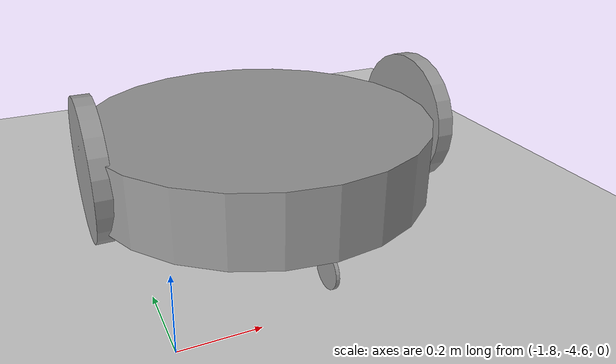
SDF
<sdf version="1.6">
 <world name="default">
  <model name="ground_plane">
   <static>1</static>
   <link name="link">
    <collision name="collision">
     <geometry><plane><normal>0 0 1</normal><size>100 100</size></plane></geometry>
     <surface>
      <contact><collide_bitmask>65535</collide_bitmask></contact>
      <friction><ode><mu>100</mu><mu2>50</mu2></ode></friction>
     </surface>
    </collision>
    <visual name="visual">
     <cast_shadows>0</cast_shadows>
     <geometry><plane><normal>0 0 1</normal><size>100 100</size></plane></geometry>
     <material>
      <script><uri>file://media/materials/scripts/gazebo.material</uri><name>Gazebo/Grey</name></script>
     </material>
    </visual>
   </link>
  </model>
  <model name="round_robot">
   <link name="link_1">
    <pose>-0.012515 0.112498 0.027501 0 -0 0</pose>
    <inertial>
     <mass>1</mass>
     <inertia><ixx>0.145833</ixx><ixy>0</ixy><ixz>0</ixz><iyy>0.145833</iyy><iyz>0</iyz><izz>0.125</izz></inertia>
    </inertial>
    <visual name="visual">
     <geometry><cylinder><radius>0.5</radius><length>0.2</length></cylinder></geometry>
     <material>
      <lighting>1</lighting>
      <script><uri>file://media/materials/scripts/gazebo.material</uri><name>Gazebo/Grey</name></script>
      <shader type="pixel"><normal_map>__default__</normal_map></shader>
      <ambient>0.3 0.3 0.3 1</ambient>
      <diffuse>0.7 0.7 0.7 1</diffuse>
      <specular>0.01 0.01 0.01 1</specular>
      <emissive>0 0 0 1</emissive>
     </material>
    </visual>
    <collision name="collision">
     <geometry><cylinder><radius>0.5</radius><length>0.2</length></cylinder></geometry>
     <surface>
      <friction>
       <ode><mu>1</mu><mu2>1</mu2><fdir1>0 0 0</fdir1><slip1>0</slip1><slip2>0</slip2></ode>
       <torsional>
        <coefficient>1</coefficient>
        <patch_radius>0</patch_radius>
        <surface_radius>0</surface_radius>
        <use_patch_radius>1</use_patch_radius>
        <ode><slip>0</slip></ode>
       </torsional>
      </friction>
      <bounce><restitution_coefficient>0</restitution_coefficient><threshold>1e+06</threshold></bounce>
      <contact>
       <collide_without_contact>0</collide_without_contact>
       <collide_without_contact_bitmask>1</collide_without_contact_bitmask>
       <collide_bitmask>1</collide_bitmask>
       <ode>
        <soft_cfm>0</soft_cfm>
        <soft_erp>0.2</soft_erp>
        <kp>1e+13</kp>
        <kd>1</kd>
        <max_vel>0.01</max_vel>
        <min_depth>0</min_depth>
       </ode>
       <bullet>
        <split_impulse>1</split_impulse>
        <split_impulse_penetration_threshold>-0.01</split_impulse_penetration_threshold>
        <soft_cfm>0</soft_cfm>
        <soft_erp>0.2</soft_erp>
        <kp>1e+13</kp>
        <kd>1</kd>
       </bullet>
      </contact>
     </surface>
    </collision>
   </link>
   <link name="link_2">
    <pose>-0.487485 0.112508 0.047498 1.57075 0 1.5707</pose>
    <inertial>
     <mass>1</mass>
     <inertia><ixx>0.145833</ixx><ixy>0</ixy><ixz>0</ixz><iyy>0.145833</iyy><iyz>0</iyz><izz>0.125</izz></inertia>
    </inertial>
    <visual name="visual">
     <geometry><cylinder><radius>0.2</radius><length>0.05</length></cylinder></geometry>
     <material>
      <lighting>1</lighting>
      <script><uri>file://media/materials/scripts/gazebo.material</uri><name>Gazebo/Grey</name></script>
      <shader type="pixel"><normal_map>__default__</normal_map></shader>
      <ambient>0.3 0.3 0.3 1</ambient>
      <diffuse>0.7 0.7 0.7 1</diffuse>
      <specular>0.01 0.01 0.01 1</specular>
      <emissive>0 0 0 1</emissive>
     </material>
    </visual>
    <collision name="collision">
     <geometry><cylinder><radius>0.2</radius><length>0.05</length></cylinder></geometry>
     <surface>
      <friction>
       <ode><mu>1</mu><mu2>1</mu2><fdir1>0 0 0</fdir1><slip1>0</slip1><slip2>0</slip2></ode>
       <torsional>
        <coefficient>1</coefficient>
        <patch_radius>0</patch_radius>
        <surface_radius>0</surface_radius>
        <use_patch_radius>1</use_patch_radius>
        <ode><slip>0</slip></ode>
       </torsional>
      </friction>
      <bounce><restitution_coefficient>0</restitution_coefficient><threshold>1e+06</threshold></bounce>
      <contact>
       <collide_without_contact>0</collide_without_contact>
       <collide_without_contact_bitmask>1</collide_without_contact_bitmask>
       <collide_bitmask>1</collide_bitmask>
       <ode>
        <soft_cfm>0</soft_cfm>
        <soft_erp>0.2</soft_erp>
        <kp>1e+13</kp>
        <kd>1</kd>
        <max_vel>0.01</max_vel>
        <min_depth>0</min_depth>
       </ode>
       <bullet>
        <split_impulse>1</split_impulse>
        <split_impulse_penetration_threshold>-0.01</split_impulse_penetration_threshold>
        <soft_cfm>0</soft_cfm>
        <soft_erp>0.2</soft_erp>
        <kp>1e+13</kp>
        <kd>1</kd>
       </bullet>
      </contact>
     </surface>
    </collision>
   </link>
   <link name="link_2_clone">
    <pose>0.512514 0.112498 0.047501 1.57075 0 1.5707</pose>
    <inertial>
     <mass>1</mass>
     <inertia><ixx>0.145833</ixx><ixy>0</ixy><ixz>0</ixz><iyy>0.145833</iyy><iyz>0</iyz><izz>0.125</izz></inertia>
    </inertial>
    <visual name="visual">
     <geometry><cylinder><radius>0.2</radius><length>0.05</length></cylinder></geometry>
     <material>
      <lighting>1</lighting>
      <script><uri>file://media/materials/scripts/gazebo.material</uri><name>Gazebo/Grey</name></script>
      <shader type="pixel"><normal_map>__default__</normal_map></shader>
      <ambient>0.3 0.3 0.3 1</ambient>
      <diffuse>0.7 0.7 0.7 1</diffuse>
      <specular>0.01 0.01 0.01 1</specular>
      <emissive>0 0 0 1</emissive>
     </material>
    </visual>
    <collision name="collision">
     <geometry><cylinder><radius>0.2</radius><length>0.05</length></cylinder></geometry>
     <surface>
      <friction>
       <ode><mu>1</mu><mu2>1</mu2><fdir1>0 0 0</fdir1><slip1>0</slip1><slip2>0</slip2></ode>
       <torsional>
        <coefficient>1</coefficient>
        <patch_radius>0</patch_radius>
        <surface_radius>0</surface_radius>
        <use_patch_radius>1</use_patch_radius>
        <ode><slip>0</slip></ode>
       </torsional>
      </friction>
      <bounce><restitution_coefficient>0</restitution_coefficient><threshold>1e+06</threshold></bounce>
      <contact>
       <collide_without_contact>0</collide_without_contact>
       <collide_without_contact_bitmask>1</collide_without_contact_bitmask>
       <collide_bitmask>1</collide_bitmask>
       <ode>
        <soft_cfm>0</soft_cfm>
        <soft_erp>0.2</soft_erp>
        <kp>1e+13</kp>
        <kd>1</kd>
        <max_vel>0.01</max_vel>
        <min_depth>0</min_depth>
       </ode>
       <bullet>
        <split_impulse>1</split_impulse>
        <split_impulse_penetration_threshold>-0.01</split_impulse_penetration_threshold>
        <soft_cfm>0</soft_cfm>
        <soft_erp>0.2</soft_erp>
        <kp>1e+13</kp>
        <kd>1</kd>
       </bullet>
      </contact>
     </surface>
    </collision>
   </link>
   <link name="link_2_clone_0">
    <pose>-0.012515 -0.337502 -0.122499 1.57075 0 1.5707</pose>
    <inertial>
     <mass>1</mass>
     <inertia><ixx>0.145833</ixx><ixy>0</ixy><ixz>0</ixz><iyy>0.145833</iyy><iyz>0</iyz><izz>0.125</izz></inertia>
    </inertial>
    <visual name="visual">
     <geometry><cylinder><radius>0.05</radius><length>0.01</length></cylinder></geometry>
     <material>
      <lighting>1</lighting>
      <script><uri>file://media/materials/scripts/gazebo.material</uri><name>Gazebo/Grey</name></script>
      <shader type="pixel"><normal_map>__default__</normal_map></shader>
      <ambient>0.3 0.3 0.3 1</ambient>
      <diffuse>0.7 0.7 0.7 1</diffuse>
      <specular>0.01 0.01 0.01 1</specular>
      <emissive>0 0 0 1</emissive>
     </material>
    </visual>
    <collision name="collision">
     <geometry><cylinder><radius>0.05</radius><length>0.01</length></cylinder></geometry>
     <surface>
      <friction>
       <ode><mu>1</mu><mu2>1</mu2><fdir1>0 0 0</fdir1><slip1>0</slip1><slip2>0</slip2></ode>
       <torsional>
        <coefficient>1</coefficient>
        <patch_radius>0</patch_radius>
        <surface_radius>0</surface_radius>
        <use_patch_radius>1</use_patch_radius>
        <ode><slip>0</slip></ode>
       </torsional>
      </friction>
      <bounce><restitution_coefficient>0</restitution_coefficient><threshold>1e+06</threshold></bounce>
      <contact>
       <collide_without_contact>0</collide_without_contact>
       <collide_without_contact_bitmask>1</collide_without_contact_bitmask>
       <collide_bitmask>1</collide_bitmask>
       <ode>
        <soft_cfm>0</soft_cfm>
        <soft_erp>0.2</soft_erp>
        <kp>1e+13</kp>
        <kd>1</kd>
        <max_vel>0.01</max_vel>
        <min_depth>0</min_depth>
       </ode>
       <bullet>
        <split_impulse>1</split_impulse>
        <split_impulse_penetration_threshold>-0.01</split_impulse_penetration_threshold>
        <soft_cfm>0</soft_cfm>
        <soft_erp>0.2</soft_erp>
        <kp>1e+13</kp>
        <kd>1</kd>
       </bullet>
      </contact>
     </surface>
    </collision>
   </link>
   <joint name="link_1_JOINT_0" type="revolute">
    <parent>link_1</parent>
    <child>link_2</child>
    <axis>
     <xyz>1 0 0</xyz>
     <use_parent_model_frame>0</use_parent_model_frame>
     <limit>
      <lower>-1.79769e+308</lower>
      <upper>1.79769e+308</upper>
      <effort>-1</effort>
      <velocity>-1</velocity>
     </limit>
     <dynamics>
      <spring_reference>0</spring_reference>
      <spring_stiffness>0</spring_stiffness>
      <damping>0</damping>
     </dynamics>
    </axis>
    <physics>
     <ode><limit><cfm>0</cfm><erp>0.2</erp></limit><suspension><cfm>0</cfm><erp>0.2</erp></suspension></ode>
    </physics>
   </joint>
   <joint name="link_1_JOINT_1" type="revolute">
    <parent>link_1</parent>
    <child>link_2</child>
    <axis>
     <xyz>1 0 0</xyz>
     <use_parent_model_frame>0</use_parent_model_frame>
     <limit>
      <lower>-1.79769e+308</lower>
      <upper>1.79769e+308</upper>
      <effort>-1</effort>
      <velocity>-1</velocity>
     </limit>
     <dynamics>
      <spring_reference>0</spring_reference>
      <spring_stiffness>0</spring_stiffness>
      <damping>0</damping>
     </dynamics>
    </axis>
    <physics>
     <ode><limit><cfm>0</cfm><erp>0.2</erp></limit><suspension><cfm>0</cfm><erp>0.2</erp></suspension></ode>
    </physics>
   </joint>
   <joint name="link_1_JOINT_2" type="revolute">
    <parent>link_1</parent>
    <child>link_2_clone</child>
    <axis>
     <xyz>1 0 0</xyz>
     <use_parent_model_frame>0</use_parent_model_frame>
     <limit>
      <lower>-1.79769e+308</lower>
      <upper>1.79769e+308</upper>
      <effort>-1</effort>
      <velocity>-1</velocity>
     </limit>
     <dynamics>
      <spring_reference>0</spring_reference>
      <spring_stiffness>0</spring_stiffness>
      <damping>0</damping>
     </dynamics>
    </axis>
    <physics>
     <ode><limit><cfm>0</cfm><erp>0.2</erp></limit><suspension><cfm>0</cfm><erp>0.2</erp></suspension></ode>
    </physics>
   </joint>
   <joint name="link_1_JOINT_4" type="revolute">
    <parent>link_1</parent>
    <child>link_2_clone_0</child>
    <axis>
     <xyz>1 0 0</xyz>
     <use_parent_model_frame>0</use_parent_model_frame>
     <limit>
      <lower>-1.79769e+308</lower>
      <upper>1.79769e+308</upper>
      <effort>-1</effort>
      <velocity>-1</velocity>
     </limit>
     <dynamics>
      <spring_reference>0</spring_reference>
      <spring_stiffness>0</spring_stiffness>
      <damping>0</damping>
     </dynamics>
    </axis>
    <physics>
     <ode><limit><cfm>0</cfm><erp>0.2</erp></limit><suspension><cfm>0</cfm><erp>0.2</erp></suspension></ode>
    </physics>
   </joint>
   <static>0</static>
   <pose>-1.38136 -4.18027 0.15751 -0.044073 8e-06 -0.000597</pose>
  </model>
 </world>
</sdf>
